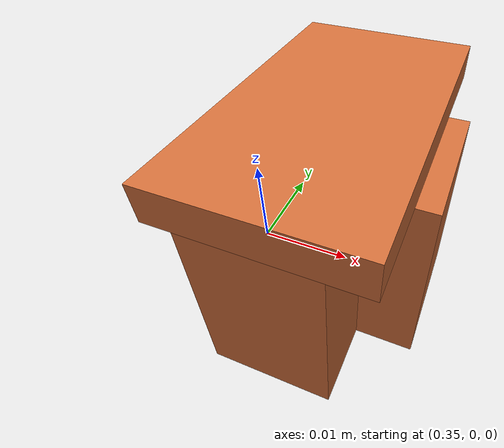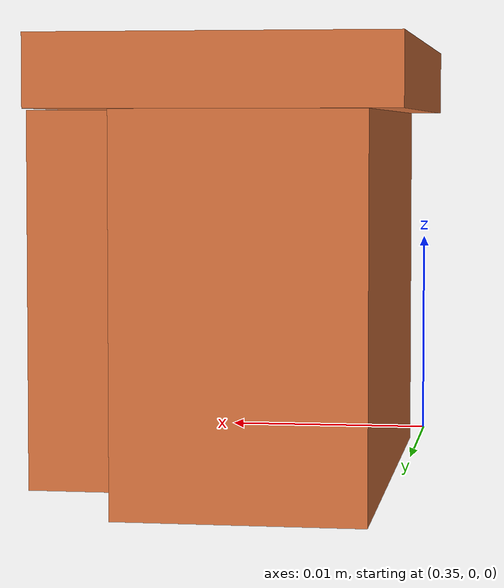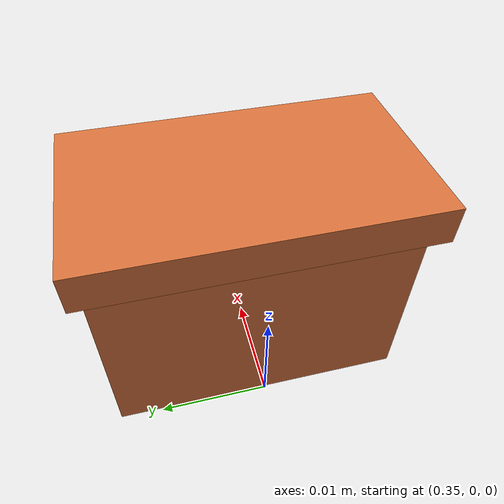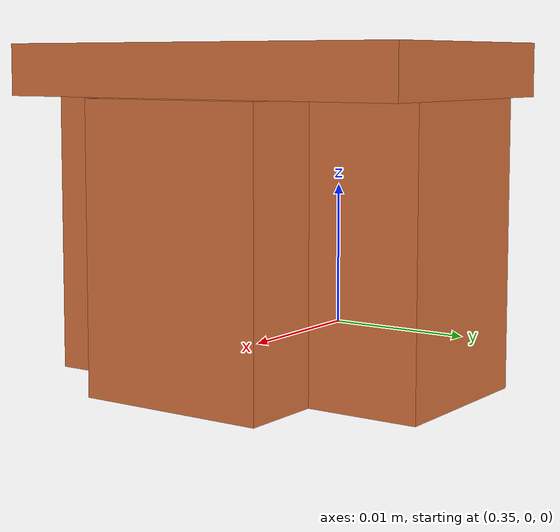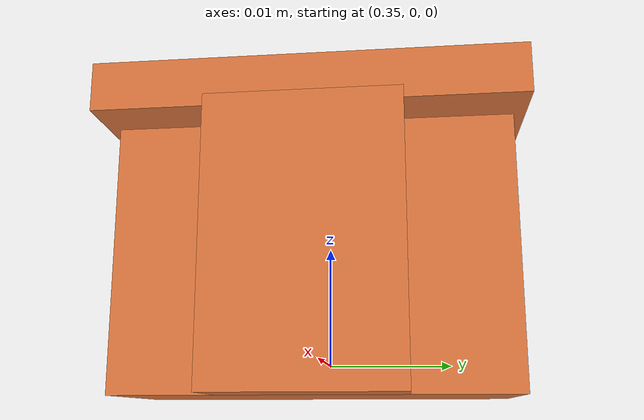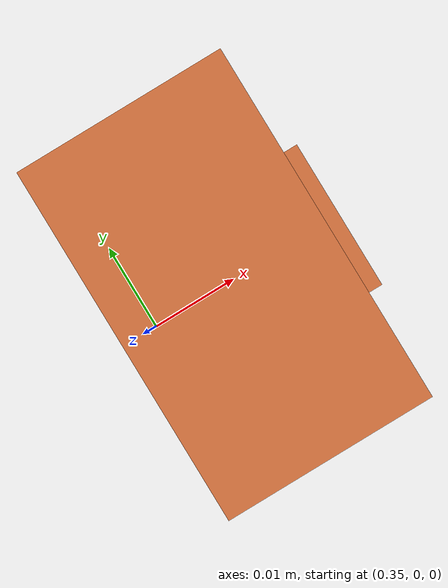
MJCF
<mujoco model="connector">

    <compiler angle="radian" />

    <asset>
        <material name="connector_mat" reflectance="0" rgba="0.824 0.435 0.227 1" shininess="0.5" specular="0" />
        <texture builtin="flat" height="256" width="256" rgb1="1 1 1" rgb2="1 1 1" type="skybox" />
    </asset>

    <worldbody>
        <body name="connector_body" pos="0.35 0.0 .02" quat="0 0 1 0">
            <freejoint name="connector" />
            <geom name="connector_back" pos="-0.008774999618530274 0.0 0.00175" type="box" material="connector_mat" density="200" friction="0.95 0.3 0.1" condim="4" solimp="0.998 0.998 0.001" solref="0.02 1" size="0.008774999618530274 0.015 0.00175" />
            <geom pos="-0.007689999759197235 2.0324375890960812e-19 0.013100000381469728" type="box" material="connector_mat" density="100" friction="0.95 0.3 0.1" condim="4" solimp="0.998 0.998 0.001" solref="0.02 1" size="0.0060399997830390935 0.014175000190734864 0.009600000381469726" />
            <geom  pos="-0.01663000011444092 4.9998760223388105e-06 0.013100000381469726" type="box" material="connector_mat" density="100" friction="0.95 0.3 0.1" condim="4" solimp="0.998 0.998 0.001" solref="0.02 1" size="0.00290000057220459 0.006555000066757202 0.009600000381469726" />
        </body>
    </worldbody>

    <sensor>
        <framepos name="connector_pos" objtype="body" objname="connector_body"/>
        <framequat name="connector_quat" objtype="body" objname="connector_body"/>
    </sensor>

    <visual>
        <global offwidth="1920" offheight="1080"/>
        <scale framewidth="0.005" framelength="0.1"/>
    </visual>

</mujoco>
